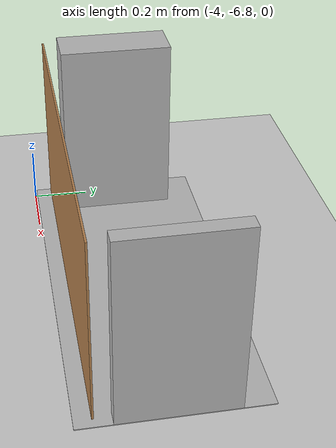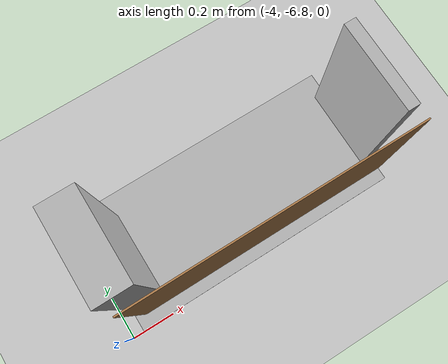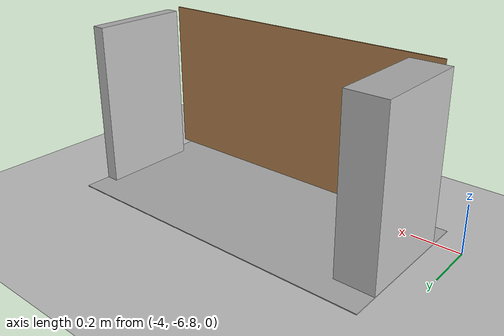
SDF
<sdf version="1.6">
 <world name="default">
  <model name="ground_plane">
   <static>1</static>
   <link name="link">
    <collision name="collision">
     <geometry><plane><normal>0 0 1</normal><size>100 100</size></plane></geometry>
     <surface>
      <contact><collide_bitmask>65535</collide_bitmask></contact>
      <friction><ode><mu>100</mu><mu2>50</mu2></ode></friction>
     </surface>
    </collision>
    <visual name="visual">
     <cast_shadows>0</cast_shadows>
     <geometry><plane><normal>0 0 1</normal><size>100 100</size></plane></geometry>
     <material>
      <script><uri>file://media/materials/scripts/gazebo.material</uri><name>Gazebo/Grey</name></script>
     </material>
    </visual>
   </link>
  </model>
  <model name="frc2016_sallyport">
   <link name="base">
    <inertial>
     <mass>50</mass>
     <pose>0 0 0.35406 0 -0 0</pose>
     <inertia><ixx>0.727808</ixx><ixy>0</ixy><ixz>0</ixz><iyy>1.77488</iyy><iyz>0</iyz><izz>1.64109</izz></inertia>
    </inertial>
    <visual name="platform">
     <pose>0 0 0.06974 0 -0 0</pose>
     <geometry><box><size>1.27 0.5969 0.003175</size></box></geometry>
    </visual>
    <collision name="platform">
     <pose>0 0 0.06974 0 -0 0</pose>
     <geometry><box><size>1.27 0.5969 0.003175</size></box></geometry>
    </collision>
    <visual name="left_column">
     <pose>-0.5588 0.00318 0.38876 0 -0 0</pose>
     <geometry><box><size>0.1524 0.38735 0.635</size></box></geometry>
    </visual>
    <collision name="left_column">
     <pose>-0.5588 0.00318 0.38876 0 -0 0</pose>
     <geometry><box><size>0.1524 0.38735 0.635</size></box></geometry>
    </collision>
    <visual name="right_column">
     <pose>0.6096 0.00635 0.38876 0 -0 0</pose>
     <geometry><box><size>0.0508 0.381 0.635</size></box></geometry>
    </visual>
    <collision name="right_column">
     <pose>0.6096 0.00635 0.38876 0 -0 0</pose>
     <geometry><box><size>0.0508 0.381 0.635</size></box></geometry>
    </collision>
    <visual name="castor1">
     <pose>-0.45886 0.15389 0.03487 0 -0 0</pose>
     <geometry><sphere><radius>0.03487</radius></sphere></geometry>
    </visual>
    <collision name="castor1">
     <pose>-0.45886 0.15389 0.03487 0 -0 0</pose>
     <geometry><sphere><radius>0.03487</radius></sphere></geometry>
    </collision>
    <visual name="castor2">
     <pose>-0.28117 -0.22559 0.03487 0 -0 0</pose>
     <geometry><sphere><radius>0.03487</radius></sphere></geometry>
    </visual>
    <collision name="castor2">
     <pose>-0.28117 -0.22559 0.03487 0 -0 0</pose>
     <geometry><sphere><radius>0.03487</radius></sphere></geometry>
    </collision>
    <visual name="castor3">
     <pose>0.27933 -0.2272 0.03487 0 -0 0</pose>
     <geometry><sphere><radius>0.03487</radius></sphere></geometry>
    </visual>
    <collision name="castor3">
     <pose>0.27933 -0.2272 0.03487 0 -0 0</pose>
     <geometry><sphere><radius>0.03487</radius></sphere></geometry>
    </collision>
    <visual name="castor4">
     <pose>0.4571 0.15424 0.03487 0 -0 0</pose>
     <geometry><sphere><radius>0.03487</radius></sphere></geometry>
    </visual>
    <collision name="castor4">
     <pose>0.4571 0.15424 0.03487 0 -0 0</pose>
     <geometry><sphere><radius>0.03487</radius></sphere></geometry>
    </collision>
   </link>
   <link name="door">
    <pose>0.02255 -0.24321 0.40332 0 -0 0</pose>
    <inertial>
     <pose>0 0 0 -1.5707 0 0</pose>
     <mass>2</mass>
     <inertia>
      <ixx>0.0619421</ixx>
      <ixy>0</ixy>
      <ixz>0</ixz>
      <iyy>0.246462</iyy>
      <iyz>0</iyz>
      <izz>0.30839</izz>
     </inertia>
    </inertial>
    <visual name="visual">
     <geometry><box><size>1.21603 0.00635 0.6096</size></box></geometry>
     <material><script><name>Gazebo/WoodFloor</name><uri>__default__</uri></script></material>
    </visual>
    <collision name="collision"><geometry><box><size>1.21603 0.00635 0.6096</size></box></geometry></collision>
   </link>
   <joint name="door_joint" type="revolute">
    <pose>-0.608015 0 0 0 -0 0</pose>
    <parent>base</parent>
    <child>door</child>
    <axis>
     <xyz>0 0 1</xyz>
     <limit><lower>-3.1415</lower><upper>0</upper></limit>
     <use_parent_model_frame>0</use_parent_model_frame>
     <dynamics><spring_reference>0</spring_reference><spring_stiffness>0</spring_stiffness></dynamics>
    </axis>
   </joint>
   <pose>-3.3028 -6.49688 1e-06 3e-06 -0 0.004414</pose>
  </model>
 </world>
</sdf>
